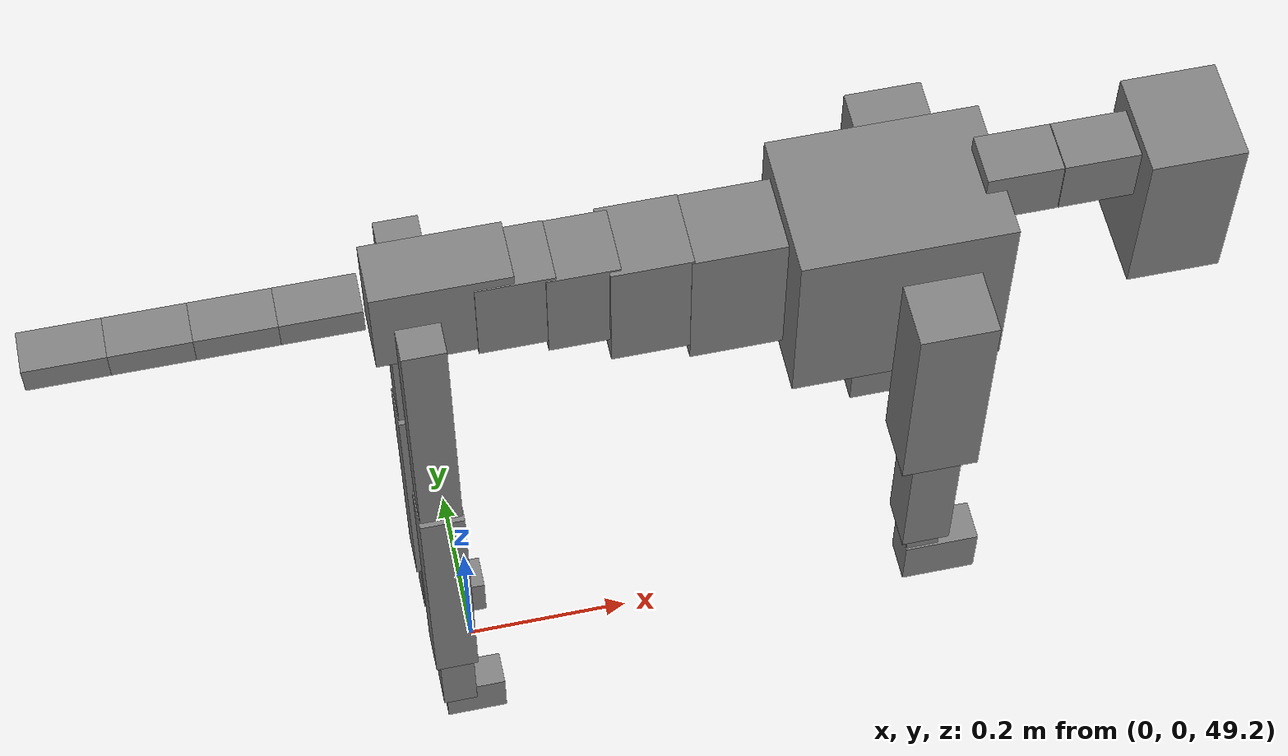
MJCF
<mujoco model="dog">

    <default>
        <joint armature="0.02" stiffness="1" damping="0.2" limited="true"/>
        <geom condim="3" friction="1 0.05 0.05" margin="0.01"/>
        <motor ctrllimited="true" ctrlrange="-1.0 1.0" forcelimited="true" gear="50"/>
    </default>

    <compiler inertiafromgeom="true" angle="radian"/>

    <option timestep="0.016" iterations="50" tolerance="1e-10" solver="Newton" jacobian="dense" cone="pyramidal"/>

    <size nconmax="20000" njmax="60000" nstack="5000000"/>
    <visual>
        <map force="0.1" zfar="30"/>
        <rgba haze="0.15 0.25 0.35 1"/>
        <quality shadowsize="2048"/>
        <global offwidth="800" offheight="800"/>
    </visual>

    <asset>
        <texture type="skybox" builtin="gradient" rgb1="0.3 0.5 0.7" rgb2="0 0 0" width="512" height="512"/>
        <texture name="texplane" type="2d" builtin="checker" rgb1=".2 .3 .4" rgb2=".1 0.15 0.2" width="512" height="512"
                 mark="cross" markrgb=".8 .8 .8"/>
        <texture name="texgeom" type="cube" builtin="flat" mark="cross" width="127" height="1278" rgb1="0.8 0.6 0.4"
                 rgb2="0.8 0.6 0.4" markrgb="1 1 1" random="0.01"/>

        <material name="matplane" reflectance="0.3" texture="texplane" texrepeat="1 1" texuniform="true"/>
        <material name="matgeom" texture="texgeom" texuniform="true" rgba="0.8 0.6 .4 1"/>
    </asset>

    <worldbody>
        <geom name="floor" pos="0 0 0" size="0 0 .25" type="plane" material="matplane" condim="3"/>

        <light directional="false" diffuse=".2 .2 .2" specular="0 0 0" pos="0 0 5" dir="0 0 -1" castshadow="false"/>
        <light mode="targetbodycom" target="torso" directional="false" diffuse=".8 .8 .8" specular="0.3 0.3 0.3"
               pos="0 0 4.0" dir="0 0 -1"/>

        <body name="root" pos="0 0 50">
            <freejoint name="root_1"/>
            <geom type="box" pos="0 0 -0.02" size="0.0774  0.0358  0.063" density="2030"/>

            <body name="spine1" pos="0.054 0 0">
                <joint name="spine1_y" axis="0 1 0" range="0 0.7" limited="true"/>
                <geom type="box" pos="0.02375 0 -0.03" size="0.04375  0.0375  0.05985" density="2030"/>

                <body name="spine2" pos="0.0612 0 0">
                    <joint name="spine2_y" axis="0 1 0" range="-0.15 0.15" limited="true"/>
                    <geom type="box" pos="0.03555  0  -0.04" size="0.04055  0.039  0.06615" density="2030"/>

                    <body name="spine3" pos="0.0730 0 0">
                        <joint name="spine3_y" axis="0 1 0" range="-0.15 0.15" limited="true"/>
                        <geom type="box" pos="0.03555  0  -0.057" size="0.04555  0.0445  0.081" density="2030"/>

                        <body name="spine4" pos="0.0780 0 0">
                            <joint name="spine4_y" axis="0 1 0" range="-0.15 0.15" limited="true"/>
                            <geom type="box" pos="0.05265  0  -0.07" size="0.05265  0.045  0.09135" density="2030"/>

                            <body name="torso" pos="0.1082 0 0">
                                <joint name="torso_y" axis="0 1 0" range="-0.15 0.15" limited="true"/>
                                <geom type="box" pos="0.11925  0  -0.085" size="0.11925  0.085  0.11745"
                                      density="2030"/>

                                <body name="neck1" pos="0.2160  0   0.0180">
                                    <joint name="neck1_y" axis="0 1 0" range="-1.2  -1" limited="true"/>
                                    <geom type="box" pos="0.0423  0  0" size="0.0423  0.03  0.036" density="2325"/>

                                    <body name="neck2" pos="0.0853  0  0">
                                        <joint name="neck2_y" axis="0 1 0" range="0.1  0" limited="true"/>
                                        <geom type="box" pos="0.0423  0  0" size="0.0423  0.03  0.036" density="2325"/>

                                        <body name="head" pos="0.0853  0  0">
                                            <joint name="head_y" axis="0 1 0" range="-0.3  -0.2" limited="true"/>
                                            <geom type="box" pos="0.0531  0  -0.055" size="0.0531  0.06  0.1044"
                                                  density="4030"/>

                                        </body>
                                    </body>
                                </body>

                                <body name="front_shoulder" pos="0.156  0   -0.0480">
                                    <joint name="front_shoulder_y" axis="0 1 0" range="-1 1.5" limited="true"/>
                                    <geom type="box" pos="0 0.13 -0.1112" size="0.0439  0.0375  0.1378" density="1158"/>
                                    <geom type="box" pos="0 -0.13 -0.1112" size="0.0439  0.0375  0.1378"
                                          density="1158"/>

                                    <body name="front_elbow" pos="0  0  -0.2224">
                                        <joint name="front_elbow_y" axis="0 1 0" range="-2 0" limited="true"/>
                                        <geom type="box" pos="0 0.13 -0.1037" size="0.0283  0.0290  0.1037"
                                              density="1081"/>
                                        <geom type="box" pos="0 -0.13 -0.1037" size="0.0283  0.0290  0.1037"
                                              density="1081"/>

                                        <body name="front_wrist" pos="0  0  -0.2074">
                                            <joint name="front_wrist_y" axis="0 1 0" range="-0.2 0" limited="true"/>
                                            <geom type="box" pos="0 0.13 -0.0204" size="0.0192  0.0213  0.0335"
                                                  density="1664"/>
                                            <geom type="box" pos="0 -0.13 -0.0204" size="0.0192  0.0213  0.0335"
                                                  density="1664"/>

                                            <body name="front_finger_end" pos="0  0  -0.0408">
                                                <joint name="front_finger_y" axis="0 1 0" range="-0.4 1"
                                                       limited="true"/>
                                                <geom type="box" pos="0.0239  0.13  -0.0191"
                                                      size="0.0438  0.0239  0.0341" density="1515"/>
                                                <geom type="box" pos="0.0239  -0.13  -0.0191"
                                                      size="0.0438  0.0239  0.0341" density="1515"/>

                                            </body>

                                        </body>
                                    </body>
                                </body>

                            </body>
                        </body>
                    </body>
                </body>
            </body>

            <body name="back_hip" pos="-0.03 0 -0.018">
                <joint name="back_hip_y" axis="0 1 0" range="-1.5 0.3" limited="true"/>
                <geom type="box" pos="0 0.07 -0.1693" size="0.0247  0.0194  0.1921" density="1154"/>
                <geom type="box" pos="0 -0.07 -0.1693" size="0.0247  0.0194  0.1921" density="1154"/>

                <body name="back_knee" pos="0  0  -0.3385">
                    <joint name="back_knee_y" axis="0 1 0" range="0 2.8" limited="true"/>
                    <geom type="box" pos="0 0.07 -0.1624" size="0.0261  0.0257  0.1780" density="1227"/>
                    <geom type="box" pos="0 -0.07 -0.1624" size="0.0261  0.0257  0.1780" density="1227"/>

                    <body name="back_ankle" pos="0  0  -0.3249">
                        <joint name="back_ankle_y" axis="0 1 0" range="-2.2 0" limited="true"/>
                        <geom type="box" pos="0 0.07 -0.0538" size="0.0210  0.0210  0.0651" density="1284"/>
                        <geom type="box" pos="0 -0.07 -0.0538" size="0.0210  0.0210  0.0651" density="1284"/>

                        <body name="back_toe_end" pos="0  0  -0.1076">
                            <joint name="back_toe_y" axis="0 1 0" range="-0.4 1" limited="true"/>
                            <geom type="box" pos="0.0203  0.07  -0.0165" size="0.0373  0.0203  0.0315" density="1515"/>
                            <geom type="box" pos="0.0203  -0.07  -0.0165" size="0.0373  0.0203  0.0315" density="1515"/>

                        </body>
                    </body>
                </body>
            </body>

            <body name="tail1" pos="-0.074 0 -0.006">
                <joint name="tail1_y" axis="0 1 0" range="-0.2 0.2" limited="true"/>
                <geom type="box" pos="-0.0536  0  0" size="0.045  0.025  0.0175" density="1587"/>

                <body name="tail2" pos="-0.09 0 0">
                    <joint name="tail2_y" axis="0 1 0" range="-0.2 0.2" limited="true"/>
                    <geom type="box" pos="-0.0536  0  0" size="0.045  0.025  0.0175" density="1587"/>

                    <body name="tail3" pos="-0.09 0 0">
                        <joint name="tail3_y" axis="0 1 0" range="-0.2 0.2" limited="true"/>
                        <geom type="box" pos="-0.0536  0  0" size="0.045  0.025  0.0175" density="1587"/>

                        <body name="tail4" pos="-0.09 0 0">
                            <joint name="tail4_y" axis="0 1 0" range="-0.2 0.2" limited="true"/>
                            <geom type="box" pos="-0.0536  0  0" size="0.045  0.025  0.0175" density="1587"/>

                        </body>
                    </body>
                </body>
            </body>
        </body>
    </worldbody>

    <actuator>
        <motor joint="spine1_y" forcerange="-150 150     "/>
        <motor joint="spine2_y" forcerange="-150 150     "/>
        <motor joint="spine3_y" forcerange="-150 150     "/>
        <motor joint="spine4_y" forcerange="-150 150     "/>
        <motor joint="torso_y" forcerange="-150 150     "/>
        <motor joint="neck1_y" forcerange="-100 100       "/>
        <motor joint="neck2_y" forcerange="-100 100       "/>
        <motor joint="head_y" forcerange="-150 150       "/>
        <motor joint="front_shoulder_y" forcerange="-150.93 199.22"/>
        <motor joint="front_elbow_y" forcerange="-184.40 126.15"/>
        <motor joint="front_wrist_y" forcerange="-79.75 90.98"/>
        <motor joint="front_finger_y" forcerange="-38.23 49.30"/>
        <motor joint="back_hip_y" forcerange="-246.65 212.15"/>
        <motor joint="back_knee_y" forcerange="-291.34 282.37"/>
        <motor joint="back_angle_y" forcerange="-55.03 180.61"/>
        <motor joint="back_toe_y" forcerange="-27.05 55.64"/>
        <motor joint="tail1_y" forcerange="-50 50     "/>
        <motor joint="tail2_y" forcerange="-50 50     "/>
        <motor joint="tail3_y" forcerange="-50 50     "/>
        <motor joint="tail4_y" forcerange="-50 50     "/>
    </actuator>
</mujoco>
